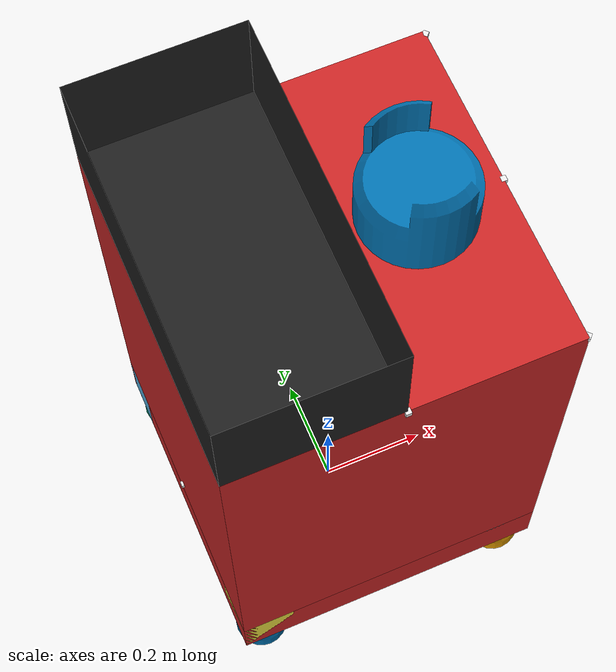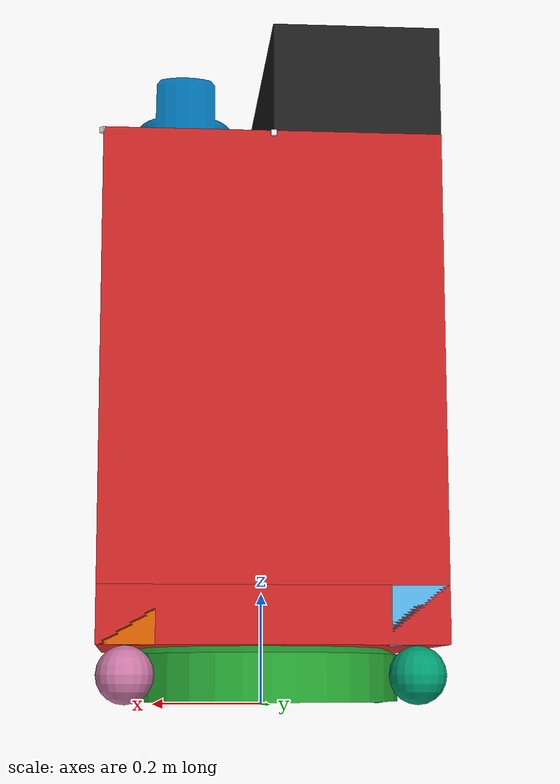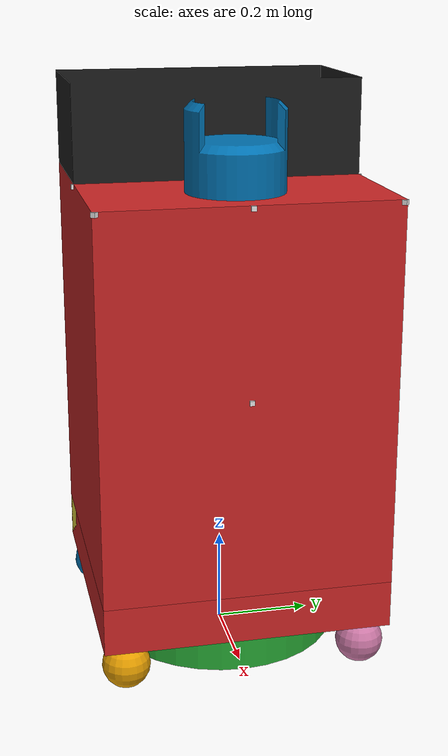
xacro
<?xml version='1.0'?>
<robot name="artpark_robot" xmlns:xacro="http://www.ros.org/wiki/xacro">

  <xacro:include filename="$(find artpark_description)/urdf/artpark_robot.gazebo" />
  <xacro:include filename="$(find artpark_description)/urdf/materials.xacro" />

  <gazebo>
    <static>false</static>
  </gazebo>

  <link name="base_link"/>

  <link name="chasis">
    <collision name='chasis_collision'>
      <geometry>
        <box size=".6 .6 .1"/>
      </geometry>
    </collision>
    <visual name='chasis_visual'>
      <geometry>
        <box size=".6 .6 .1"/>
      </geometry>
      <material name="red" />
    </visual>
    <inertial name="chasis_link_inertial">
      <mass value="2"/>
      <inertia ixx="0.06167" ixy="0.0" ixz="0.0" iyy="0.06167" iyz="0.0" izz="0.12"/>
    </inertial>
  </link>

  <joint name="chasis_joint" type="fixed">
    <parent link="base_link"/>
    <child link="chasis"/>
    <origin xyz="0 0 0.15" rpy="0 0 0"/>
  </joint>

  <link name="body">
    <collision name='body_collision'>
      <geometry>
        <box size=".6 .6 .8"/>
      </geometry>
    </collision>
    <visual name='body_visual'>
      <geometry>
        <box size=".6 .6 .8"/>
      </geometry>
      <material name="red" />
    </visual>
    <inertial name="base_link_inertial">
      <mass value="2"/>
      <inertia ixx="0.16667" ixy="0.0" ixz="0.0" iyy="0.16667" iyz="0.0" izz="0.12"/>
    </inertial>
  </link>

  <joint name="body_joint" type="continuous">
    <parent link="chasis"/>
    <child link="body"/>
    <origin xyz="0 0 .45" rpy="0 0 0"/>
    <axis xyz="0.0 0.0 1.0"/>
    <dynamics damping="1"/>
  </joint>

  <transmission name="body_trans">
    <type>transmission_interface/SimpleTransmission</type>
    <joint name="body_joint">
      <hardwareInterface>hardware_interface/EffortJointInterface</hardwareInterface>
    </joint>
    <actuator name="body_motor">
      <hardwareInterface>hardware_interface/EffortJointInterface</hardwareInterface>
      <mechanicalReduction>1</mechanicalReduction>
    </actuator>
  </transmission>

  <link name="camera">
    <collision name="camera_collision">
      <geometry>
        <box size="0.01 0.01 0.01"/>
      </geometry>
    </collision>
    <visual name="camera_visual">
      <geometry>
        <box size="0.01 0.01 0.01"/>
      </geometry>
      <material name="white" />
    </visual>
    <inertial name="camera_inertial">
      <mass value="0.1"/>
      <inertia ixx="0.00000167" ixy="0.0" ixz="0.0" iyy="0.00000167" iyz="0.0" izz="0.00000167"/>
    </inertial>
  </link>

  <joint name="camera_joint" type="fixed">
    <parent link="body"/>
    <child link="camera"/>
    <origin xyz=".3 0 .015" rpy="0.0 0.0 0.0"/>   <!--rpy = "0 .4 0"-->
  </joint>

  <link name="sonar_front">
    <collision name="front_sonar_collision">
      <geometry>
        <box size="0.01 0.01 0.01"/>
      </geometry>
    </collision>
    <visual name="front_sonar_visual">
      <geometry>
        <box size="0.01 0.01 0.01"/>
      </geometry>
      <material name="white" />
    </visual>
    <inertial name="front_sonar_inertial">
      <mass value="0.01"/>
      <inertia ixx="0.000000167" ixy="0.0" ixz="0.0" iyy="0.000000167" iyz="0.0" izz="0.000000167"/>
    </inertial>
  </link>

  <joint name="front_sonar_joint" type="fixed">
    <parent link="body"/>
    <child link="sonar_front"/>
    <origin xyz=".3 0 .395" rpy="0.0 0.0 0.0"/>
  </joint>

  <link name="sonar_front_left">
    <collision name="front_left_sonar_collision">
      <geometry>
        <box size="0.01 0.01 0.01"/>
      </geometry>
    </collision>
    <visual name="front_left_sonar_visual">
      <geometry>
        <box size="0.01 0.01 0.01"/>
      </geometry>
      <material name="white" />
    </visual>
    <inertial name="front_left_sonar_inertial">
      <mass value="0.01"/>
      <inertia ixx="0.000000167" ixy="0.0" ixz="0.0" iyy="0.000000167" iyz="0.0" izz="0.000000167"/>
    </inertial>
  </link>

  <joint name="front_left_sonar_joint" type="fixed">
    <parent link="body"/>
    <child link="sonar_front_left"/>
    <origin xyz=".3 0.295 .395" rpy="0.0 0.0 0.7854"/>
  </joint>

  <link name="sonar_front_right">
    <collision name="front_right_sonar_collision">
      <geometry>
        <box size="0.01 0.01 0.01"/>
      </geometry>
    </collision>
    <visual name="front_right_sonar_visual">
      <geometry>
        <box size="0.01 0.01 0.01"/>
      </geometry>
      <material name="white" />
    </visual>
    <inertial name="front_right_sonar_inertial">
      <mass value="0.01"/>
      <inertia ixx="0.000000167" ixy="0.0" ixz="0.0" iyy="0.000000167" iyz="0.0" izz="0.000000167"/>
    </inertial>
  </link>

  <joint name="front_right_sonar_joint" type="fixed">
    <parent link="body"/>
    <child link="sonar_front_right"/>
    <origin xyz=".3 -0.295 .395" rpy="0.0 0.0 -0.7854"/>
  </joint>

  <link name="sonar_left">
    <collision name="left_sonar_collision">
      <geometry>
        <box size="0.01 0.01 0.01"/>
      </geometry>
    </collision>
    <visual name="left_sonar_visual">
      <geometry>
        <box size="0.01 0.01 0.01"/>
      </geometry>
      <material name="white" />
    </visual>
    <inertial name="left_sonar_inertial">
      <mass value="0.01"/>
      <inertia ixx="0.000000167" ixy="0.0" ixz="0.0" iyy="0.000000167" iyz="0.0" izz="0.000000167"/>
    </inertial>
  </link>

  <joint name="left_sonar_joint" type="fixed">
    <parent link="body"/>
    <child link="sonar_left"/>
    <origin xyz="0.0 0.3 .395" rpy="0.0 0.0 1.57"/>
  </joint>

  <link name="sonar_right">
    <collision name="right_sonar_collision">
      <geometry>
        <box size="0.01 0.01 0.01"/>
      </geometry>
    </collision>
    <visual name="right_sonar_visual">
      <geometry>
        <box size="0.01 0.01 0.01"/>
      </geometry>
      <material name="white" />
    </visual>
    <inertial name="right_sonar_inertial">
      <mass value="0.01"/>
      <inertia ixx="0.000000167" ixy="0.0" ixz="0.0" iyy="0.000000167" iyz="0.0" izz="0.000000167"/>
    </inertial>
  </link>

  <joint name="right_sonar_joint" type="fixed">
    <parent link="body"/>
    <child link="sonar_right"/>
    <origin xyz="0.0 -0.3 .395" rpy="0.0 0.0 -1.57"/>
  </joint>

  <link name="sonar_rear">
    <collision name="rear_sonar_collision">
      <geometry>
        <box size="0.01 0.01 0.01"/>
      </geometry>
    </collision>
    <visual name="rear_sonar_visual">
      <geometry>
        <box size="0.01 0.01 0.01"/>
      </geometry>
      <material name="white" />
    </visual>
    <inertial name="rear_sonar_inertial">
      <mass value="0.01"/>
      <inertia ixx="0.000000167" ixy="0.0" ixz="0.0" iyy="0.000000167" iyz="0.0" izz="0.000000167"/>
    </inertial>
  </link>

  <joint name="rear_sonar_joint" type="fixed">
    <parent link="body"/>
    <child link="sonar_rear"/>
    <origin xyz="-0.3 0.0 -0.35" rpy="0.0 0.0 3.14"/>
  </joint>

  <link name="mop">
    <collision name='mop_collision'>
      <geometry>
        <cylinder radius="0.25" length="0.1"/>
      </geometry>
    </collision>
    <visual name='mop_visual'>
      <geometry>
        <mesh filename="file://$(find artpark_description)/meshes/mop.dae" scale="1.25 1.25 1"/>
      </geometry>
      <material name="green" />
    </visual>
    <inertial name="mop_inertial">
      <mass value="0.15"/>
      <inertia ixx="0.00246875" ixy="0.0" ixz="0.0" iyy="0.00246875" iyz="0.0" izz="0.0046875"/>
    </inertial>
  </link>

  <joint name="mop_joint" type="fixed">
    <parent link="base_link"/>
    <child link="mop"/>
    <origin xyz="0 0 0.055" rpy="0 0 0"/>
  </joint>

  <link name="trash_holder">
    <collision name='trash_holder_collision'>
      <origin xyz="0.15 0 0.1" rpy="0.0 0.0 1.57"/>
      <geometry >
        <mesh filename="file://$(find artpark_description)/meshes/trash_holder.dae"/>
      </geometry>
    </collision>
    <visual name='trash_holder_visual'>
      <origin xyz="0.15 0 0.1" rpy="0.0 0.0 1.57"/>
      <geometry>
        <mesh filename="file://$(find artpark_description)/meshes/trash_holder.dae"/>
      </geometry>
      <material name="black" />
    </visual>
    <inertial name="trash_holder_inertial">
      <origin xyz="0.15 0 0.1" rpy="0.0 0.0 1.57"/>
      <mass value="0.1"/>
      <inertia ixx="0.001083" ixy="0.0" ixz="0.0" iyy="0.00333" iyz="0.0" izz="0.00375"/>
    </inertial>
  </link>

  <joint name="trash_holder_joint" type="revolute">
    <parent link="body"/>
    <child link="trash_holder"/>
    <origin xyz="-0.3 0 0.4" rpy="0.0 0.0 0"/>
    <axis xyz="0.0 1.0 0.0"/>
    <limit effort="0.1" lower="-2.7475" upper="0" velocity="0.1"/>
  </joint>

  <transmission name="trash_holder_trans">
    <type>transmission_interface/SimpleTransmission</type>
    <joint name="trash_holder_joint">
      <hardwareInterface>hardware_interface/EffortJointInterface</hardwareInterface>
    </joint>
    <actuator name="trash_holder_motor">
      <hardwareInterface>hardware_interface/EffortJointInterface</hardwareInterface>
      <mechanicalReduction>1</mechanicalReduction>
    </actuator>
  </transmission>

  <link name="arm_base">
    <collision name="arm_base_collision">
      <geometry>
        <cylinder radius="0.1" length="0.2"/>
      </geometry>
    </collision>
    <visual name="arm_base_visual">
      <geometry>
        <mesh filename="file://$(find artpark_description)/meshes/arm_base.dae"/>
      </geometry>
    </visual>
    <inertial name="arm_base_inertial">
      <mass value="0.6"/>
      <inertia ixx="0.0035" ixy="0.0" ixz="0.0" iyy="0.0035" iyz="0.0" izz="0.003"/>
    </inertial>
  </link>

  <joint name="arm_base_joint" type="revolute">
    <parent link="body"/>
    <child link="arm_base"/>
    <origin xyz="0.15 0.0 0.4" rpy="0.0 0.0 0.0"/>
    <axis xyz="0.0 0.0 1.0"/>
    <limit effort="0.1" lower="-1.57" upper="1.57" velocity="1.0"/>
    <dynamics damping="1.0"/>
  </joint>

  <transmission name="arm_base_trans">
    <type>transmission_interface/SimpleTransmission</type>
    <joint name="arm_base_joint">
      <hardwareInterface>hardware_interface/EffortJointInterface</hardwareInterface>
    </joint>
    <actuator name="arm_base_motor">
      <hardwareInterface>hardware_interface/EffortJointInterface</hardwareInterface>
      <mechanicalReduction>1</mechanicalReduction>
    </actuator>
  </transmission>

  <link name="front_left_caster">
    <collision name='front_left_caster_collision'>
      <geometry>
        <box size="0.1 0.1 0.1"/>
      </geometry>
    </collision>
    <visual name='front_left_caster_visual'>
      <geometry>
        <box size="0.1 0.1 0.1"/>
      </geometry>
    </visual>
    <inertial name="front_left_caster_inertial">
      <mass value="0.1"/>
      <inertia ixx="0.000167" ixy="0.0" ixz="0.0" iyy="0.000167" iyz="0.0" izz="0.000167"/>
    </inertial>
  </link>

  <joint name="front_left_caster_joint" type="continuous">
    <parent link="chasis"/>
    <child link="front_left_caster"/>
    <origin xyz=".25 .25 0" rpy="0.0 0.0 0.0"/>
    <axis xyz="0.0 0.0 1.0"/>
    <dynamics damping="1.0" />
  </joint>

  <transmission name="front_left_caster_trans">
    <type>transmission_interface/SimpleTransmission</type>
    <joint name="front_left_caster_joint">
      <hardwareInterface>hardware_interface/EffortJointInterface</hardwareInterface>
    </joint>
    <actuator name="front_left_caster_motor">
      <hardwareInterface>hardware_interface/EffortJointInterface</hardwareInterface>
      <mechanicalReduction>1</mechanicalReduction>
    </actuator>
  </transmission>

  <link name="front_left_wheel">
    <collision name='front_left_wheel_collision'>
      <geometry>
        <sphere radius=".05"/>
      </geometry>
    </collision>
    <visual name='front_left_wheel_visual'>
      <geometry>
        <sphere radius=".05"/>
      </geometry>
    </visual>
    <inertial name="front_left_wheel_inertial">
      <mass value="1"/>
      <inertia ixx="0.001" ixy="0.0" ixz="0.0" iyy="0.001" iyz="0.0" izz="0.001"/>
    </inertial>
  </link>

  <joint name="front_left_wheel_joint" type="continuous">
    <parent link="front_left_caster"/>
    <child link="front_left_wheel"/>
    <origin xyz="0 0 -0.1" rpy="0.0 0.0 0.0"/>
    <axis xyz="0.0 1.0 0.0"/>
  </joint>

  <transmission name="front_left_wheel_trans">
    <type>transmission_interface/SimpleTransmission</type>
    <joint name="front_left_wheel_joint">
      <hardwareInterface>hardware_interface/EffortJointInterface</hardwareInterface>
    </joint>
    <actuator name="front_left_wheel_motor">
      <hardwareInterface>hardware_interface/EffortJointInterface</hardwareInterface>
      <mechanicalReduction>1</mechanicalReduction>
    </actuator>
  </transmission>

  <link name="front_right_caster">
    <collision name='front_right_caster_collision'>
      <geometry>
        <box size="0.1 0.1 0.1"/>
      </geometry>
    </collision>
    <visual name='front_right_caster_visual'>
      <geometry>
        <box size="0.1 0.1 0.1"/>
      </geometry>
    </visual>
    <inertial name="front_right_caster_inertial">
      <mass value="0.1"/>
      <inertia ixx="0.000167" ixy="0.0" ixz="0.0" iyy="0.000167" iyz="0.0" izz="0.000167"/>
    </inertial>
  </link>

  <joint name="front_right_caster_joint" type="continuous">
    <parent link="chasis"/>
    <child link="front_right_caster"/>
    <origin xyz=".25 -.25 0" rpy="0.0 0.0 0.0"/>
    <axis xyz="0.0 0.0 1.0"/>
    <dynamics damping="1.0" />
  </joint>

  <transmission name="front_right_caster_trans">
    <type>transmission_interface/SimpleTransmission</type>
    <joint name="front_right_caster_joint">
      <hardwareInterface>hardware_interface/EffortJointInterface</hardwareInterface>
    </joint>
    <actuator name="front_right_caster_motor">
      <hardwareInterface>hardware_interface/EffortJointInterface</hardwareInterface>
      <mechanicalReduction>1</mechanicalReduction>
    </actuator>
  </transmission>

  <link name="front_right_wheel">
    <collision name='front_right_wheel_collision'>
      <geometry>
        <sphere radius=".05"/>
      </geometry>
    </collision>
    <visual name='front_right_wheel_visual'>
      <geometry>
        <sphere radius=".05"/>
      </geometry>
    </visual>
    <inertial name="front_right_wheel_inertial">
      <mass value="1"/>
      <inertia ixx="0.001" ixy="0.0" ixz="0.0" iyy="0.001" iyz="0.0" izz="0.001"/>
    </inertial>
  </link>

  <joint name="front_right_wheel_joint" type="continuous">
    <parent link="front_right_caster"/>
    <child link="front_right_wheel"/>
    <origin xyz="0 0 -0.1" rpy="0.0 0.0 0.0"/>
    <axis xyz="0.0 1.0 0.0"/>
  </joint>

  <transmission name="front_right_wheel_trans">
    <type>transmission_interface/SimpleTransmission</type>
    <joint name="front_right_wheel_joint">
      <hardwareInterface>hardware_interface/EffortJointInterface</hardwareInterface>
    </joint>
    <actuator name="front_right_wheel_motor">
      <hardwareInterface>hardware_interface/EffortJointInterface</hardwareInterface>
      <mechanicalReduction>1</mechanicalReduction>
    </actuator>
  </transmission>

  <link name="rear_left_caster">
    <collision name='rear_left_caster_collision'>
      <geometry>
        <box size="0.1 0.1 0.1"/>
      </geometry>
    </collision>
    <visual name='rear_left_caster_visual'>
      <geometry>
        <box size="0.1 0.1 0.1"/>
      </geometry>
    </visual>
    <inertial name="rear_left_caster_inertial">
      <mass value="0.1"/>
      <inertia ixx="0.000167" ixy="0.0" ixz="0.0" iyy="0.000167" iyz="0.0" izz="0.000167"/>
    </inertial>
  </link>

  <joint name="rear_left_caster_joint" type="continuous">
    <parent link="chasis"/>
    <child link="rear_left_caster"/>
    <origin xyz="-.25 .25 0" rpy="0.0 0.0 0.0"/>
    <axis xyz="0.0 0.0 1.0"/>
    <dynamics damping="1.0" />
  </joint>

  <transmission name="rear_left_caster_trans">
    <type>transmission_interface/SimpleTransmission</type>
    <joint name="rear_left_caster_joint">
      <hardwareInterface>hardware_interface/EffortJointInterface</hardwareInterface>
    </joint>
    <actuator name="rear_left_caster_motor">
      <hardwareInterface>hardware_interface/EffortJointInterface</hardwareInterface>
      <mechanicalReduction>1</mechanicalReduction>
    </actuator>
  </transmission>

  <link name="rear_left_wheel">
    <collision name='rear_left_wheel_collision'>
      <geometry>
        <sphere radius=".05"/>
      </geometry>
    </collision>
    <visual name='rear_left_wheel_visual'>
      <geometry>
        <sphere radius=".05"/>
      </geometry>
    </visual>
    <inertial name="rear_left_wheel_inertial">
      <mass value="1"/>
      <inertia ixx="0.001" ixy="0.0" ixz="0.0" iyy="0.001" iyz="0.0" izz="0.001"/>
    </inertial>
  </link>

  <joint name="rear_left_wheel_joint" type="continuous">
    <parent link="rear_left_caster"/>
    <child link="rear_left_wheel"/>
    <origin xyz="0 0 -0.1" rpy="0.0 0.0 0.0"/>
    <axis xyz="0.0 1.0 0.0"/>
  </joint>

  <transmission name="rear_left_wheel_trans">
    <type>transmission_interface/SimpleTransmission</type>
    <joint name="rear_left_wheel_joint">
      <hardwareInterface>hardware_interface/EffortJointInterface</hardwareInterface>
    </joint>
    <actuator name="rear_left_wheel_motor">
      <hardwareInterface>hardware_interface/EffortJointInterface</hardwareInterface>
      <mechanicalReduction>1</mechanicalReduction>
    </actuator>
  </transmission>

  <link name="rear_right_caster">
    <collision name='rear_right_caster_collision'>
      <geometry>
        <box size="0.1 0.1 0.1"/>
      </geometry>
    </collision>
    <visual name='rear_right_caster_visual'>
      <geometry>
        <box size="0.1 0.1 0.1"/>
      </geometry>
    </visual>
    <inertial name="rear_right_caster_inertial">
      <mass value="0.1"/>
      <inertia ixx="0.000167" ixy="0.0" ixz="0.0" iyy="0.000167" iyz="0.0" izz="0.000167"/>
    </inertial>
  </link>

  <joint name="rear_right_caster_joint" type="continuous">
    <parent link="chasis"/>
    <child link="rear_right_caster"/>
    <origin xyz="-.25 -.25 0" rpy="0.0 0.0 0.0"/>
    <axis xyz="0.0 0.0 1.0"/>
    <dynamics damping="1.0" />
  </joint>

  <transmission name="rear_right_caster_trans">
    <type>transmission_interface/SimpleTransmission</type>
    <joint name="rear_right_caster_joint">
      <hardwareInterface>hardware_interface/EffortJointInterface</hardwareInterface>
    </joint>
    <actuator name="rear_right_caster_motor">
      <hardwareInterface>hardware_interface/EffortJointInterface</hardwareInterface>
      <mechanicalReduction>1</mechanicalReduction>
    </actuator>
  </transmission>

  <link name="rear_right_wheel">
    <collision name='rear_right_wheel_collision'>
      <geometry>
        <sphere radius=".05"/>
      </geometry>
    </collision>
    <visual name='rear_rigth_wheel_visual'>
      <geometry>
        <sphere radius=".05"/>
      </geometry>
    </visual>
    <inertial name="rear_right_wheel_inertial">
      <mass value="1"/>
      <inertia ixx="0.001" ixy="0.0" ixz="0.0" iyy="0.001" iyz="0.0" izz="0.001"/>
    </inertial>
  </link>

  <joint name="rear_right_wheel_joint" type="continuous">
    <parent link="rear_right_caster"/>
    <child link="rear_right_wheel"/>
    <origin xyz="0 0 -0.1" rpy="0.0 0.0 0.0"/>
    <axis xyz="0.0 1.0 0.0"/>
  </joint>

  <transmission name="rear_right_wheel_trans">
    <type>transmission_interface/SimpleTransmission</type>
    <joint name="rear_right_wheel_joint">
      <hardwareInterface>hardware_interface/EffortJointInterface</hardwareInterface>
    </joint>
    <actuator name="rear_right_wheel_motor">
      <hardwareInterface>hardware_interface/EffortJointInterface</hardwareInterface>
      <mechanicalReduction>1</mechanicalReduction>
    </actuator>
  </transmission>

</robot>
